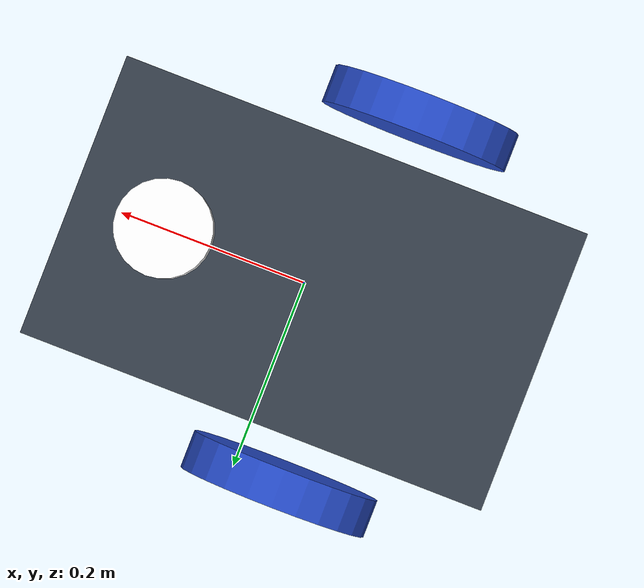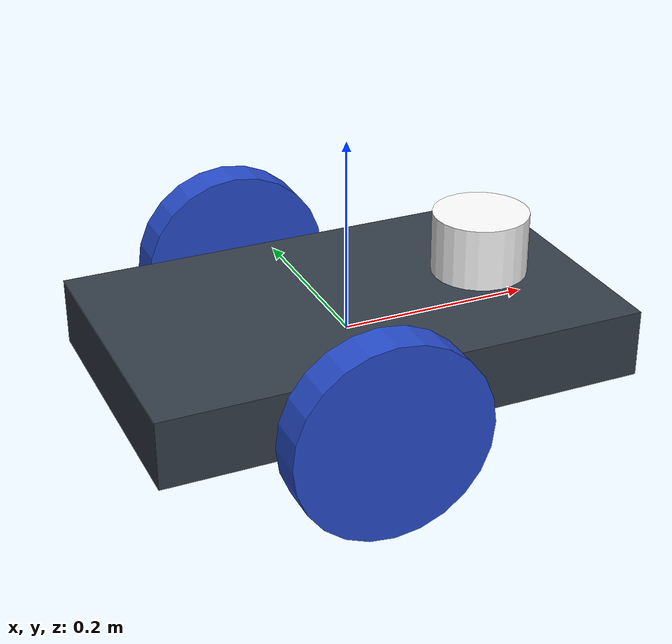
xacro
<?xml version="1.0" ?>
<robot xmlns:xacro="http://www.ros.org/wiki/xacro" name="m2wr">
      <material name="black">
    <color rgba="0.0 0.0 0.0 1.0"/>
  </material>
  <material name="blue">
    <color rgba="0.203125 0.23828125 0.28515625 1.0"/>
  </material>
  <material name="green">
    <color rgba="0.0 0.8 0.0 1.0"/>
  </material>
  <material name="grey">
    <color rgba="0.2 0.2 0.2 1.0"/>
  </material>
  <material name="orange">
    <color rgba="1.0 0.423529411765 0.0392156862745 1.0"/>
  </material>
  <material name="brown">
    <color rgba="0.870588235294 0.811764705882 0.764705882353 1.0"/>
  </material>
  <material name="red">
    <color rgba="0.80078125 0.12890625 0.1328125 1.0"/>
  </material>
  <material name="white">
    <color rgba="1.0 1.0 1.0 1.0"/>
  </material>

        <xacro:macro name="link_wheel" params="name">
        <link name="${name}">
            <inertial>
              <mass value="0.2"/>
              <origin rpy="0 1.5707 1.5707" xyz="0 0 0"/>
              <inertia ixx="0.000526666666667" ixy="0" ixz="0" iyy="0.000526666666667" iyz="0" izz="0.001"/>
            </inertial>
            <collision name="link_right_wheel_collision">
              <origin rpy="0 1.5707 1.5707" xyz="0 0 0"/>
              <geometry>
                <cylinder length="0.04" radius="0.1"/>
              </geometry>
            </collision>
            <visual name="${name}_visual">
              <origin rpy="0 1.5707 1.5707" xyz="0 0 0"/>
              <geometry>
                <cylinder length="0.04" radius="0.1"/>
              </geometry>
            </visual>
        </link>
    </xacro:macro>

    <xacro:macro name="joint_wheel" params="name child origin_xyz">
      <joint name="${name}" type="continuous">
        <origin rpy="0 0 0" xyz="${origin_xyz}"/>
        <child link="${child}"/>
        <parent link="base_footprint"/>
        <axis rpy="0 0 0" xyz="0 1 0"/>
        <limit effort="10000" velocity="1000"/>
        <joint_properties damping="1.0" friction="1.0"/>
      </joint>
    </xacro:macro>

    <xacro:macro name="cylinder_inertia" params="mass r l">
      <inertia  ixx="${mass*(3*r*r+l*l)/12}" ixy = "0" ixz = "0"
                iyy="${mass*(3*r*r+l*l)/12}" iyz = "0"
                izz="${mass*(r*r)/2}" />
    </xacro:macro>

  <link name="base_footprint">
    <!-- pose and inertial -->
    <pose>0 0 0.1 0 0 0</pose>
    <inertial>
      <mass value="5"/>
      <origin rpy="0 0 0" xyz="0 0 0.1"/>
      <inertia ixx="0.0395416666667" ixy="0" ixz="0" iyy="0.106208333333" iyz="0" izz="0.106208333333"/>
    </inertial>
    <!-- body -->
    <collision name="collision_chassis">
      <geometry>
        <box size="0.5 0.3 0.07"/>
      </geometry>
    </collision>
    <visual>
      <origin rpy="0 0 0" xyz="0 0 0"/>
      <geometry>
        <box size="0.5 0.3 0.07"/>
      </geometry>
      <material name="blue"/>
    </visual>
    <!-- caster front -->
    <collision name="caster_front_collision">
      <origin rpy=" 0 0 0" xyz="0.35 0 -0.05"/>
      <geometry>
        <sphere radius="0.05"/>
      </geometry>
      <surface>
        <friction>
          <ode>
            <mu>0</mu>
            <mu2>0</mu2>
            <slip1>1.0</slip1>
            <slip2>1.0</slip2>
          </ode>
        </friction>
      </surface>
    </collision>
    <visual name="caster_front_visual">
      <origin rpy=" 0 0 0" xyz="0.2 0 -0.05"/>
      <geometry>
        <sphere radius="0.05"/>
      </geometry>
    </visual>
  </link>

  <link name="sensor_laser">
    <inertial>
      <origin xyz="0 0 0" rpy="0 0 0" />
      <mass value="1" />
      <xacro:cylinder_inertia mass="1" r="0.05" l="0.1" />
    </inertial>

    <visual>
      <origin xyz="0 0 0" rpy="0 0 0" />
      <geometry>
        <cylinder radius="0.05" length="0.1"/>
      </geometry>
      <material name="white" />
    </visual>

    <collision>
      <origin xyz="0 0 0" rpy="0 0 0"/>
      <geometry>
        <cylinder radius="0.05" length="0.1"/>
      </geometry>
    </collision>
  </link>

  <joint name="joint_sensor_laser" type="fixed">
    <origin xyz="0.15 0 0.05" rpy="0 0 0"/>
    <parent link="base_footprint"/>
    <child link="sensor_laser"/>
  </joint>

  <xacro:link_wheel name="link_right_wheel" />
  <xacro:joint_wheel name="joint_right_wheel" child="link_right_wheel" origin_xyz="-0.05 0.20 0" />

  <xacro:link_wheel name="link_left_wheel" />
  <xacro:joint_wheel name="joint_left_wheel" child="link_left_wheel" origin_xyz="-0.05 -0.20 0" />

    <gazebo reference="base_footprint">
    <material>Gazebo/Orange</material>
  </gazebo>
  <gazebo reference="link_left_wheel">
    <material>Gazebo/Blue</material>
  </gazebo>
  <gazebo reference="link_right_wheel">
    <material>Gazebo/Blue</material>
  </gazebo>

  <gazebo>
    <plugin filename="libgazebo_ros_diff_drive.so" name="differential_drive_controller">
      <alwaysOn>true</alwaysOn>
      <updateRate>20</updateRate>
      <leftJoint>joint_left_wheel</leftJoint>
      <rightJoint>joint_right_wheel</rightJoint>
      <wheelSeparation>0.4</wheelSeparation>
      <wheelDiameter>0.2</wheelDiameter>
      <torque>0.1</torque>
      <commandTopic>cmd_vel</commandTopic>
      <odometryTopic>odom</odometryTopic>
      <odometryFrame>odom</odometryFrame>
      <robotBaseFrame>base_footprint</robotBaseFrame>
    </plugin>
  </gazebo>

  <gazebo reference="sensor_laser">
    <sensor type="ray" name="head_hokuyo_sensor">
      <pose>0 0 0 0 0 0</pose>
      <visualize>false</visualize>
      <update_rate>20</update_rate>
      <ray>
        <scan>
          <horizontal>
            <samples>720</samples>
            <resolution>1</resolution>
            <min_angle>-1.570796</min_angle>
            <max_angle>1.570796</max_angle>
          </horizontal>
        </scan>
        <range>
          <min>0.10</min>
          <max>10.0</max>
          <resolution>0.01</resolution>
        </range>
        <noise>
          <type>gaussian</type>
          <mean>0.0</mean>
          <stddev>0.01</stddev>
        </noise>
      </ray>
      <plugin name="gazebo_ros_head_hokuyo_controller" filename="libgazebo_ros_laser.so">
        <topicName>scan</topicName>
        <frameName>sensor_laser</frameName>
      </plugin>
    </sensor>
  </gazebo>

</robot>
